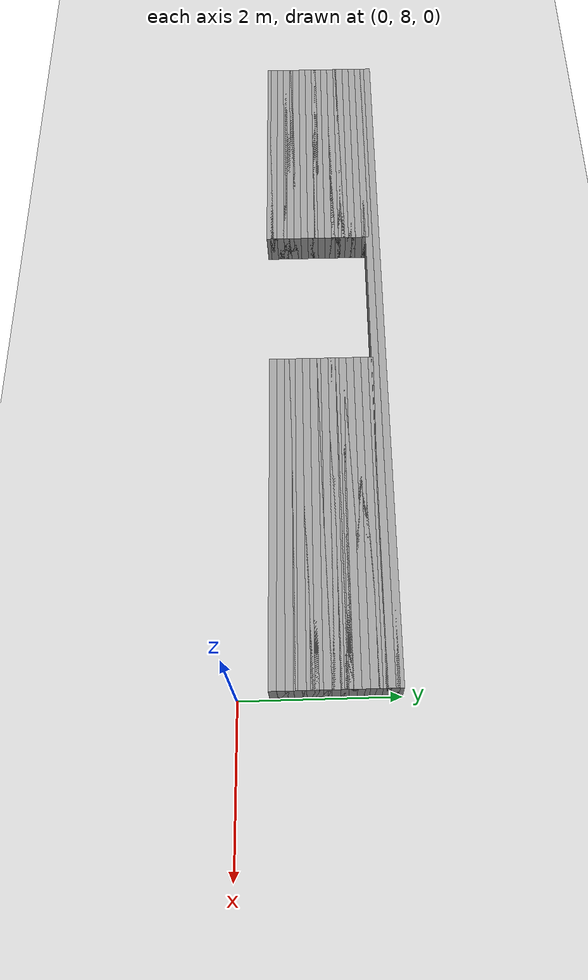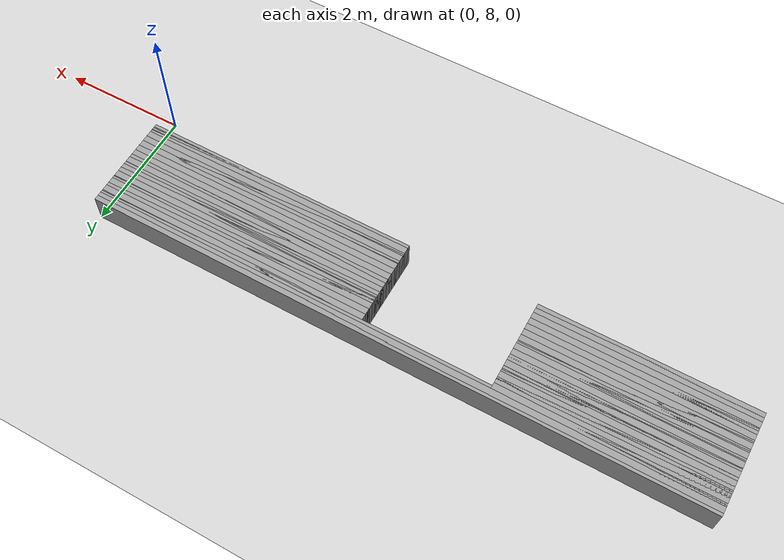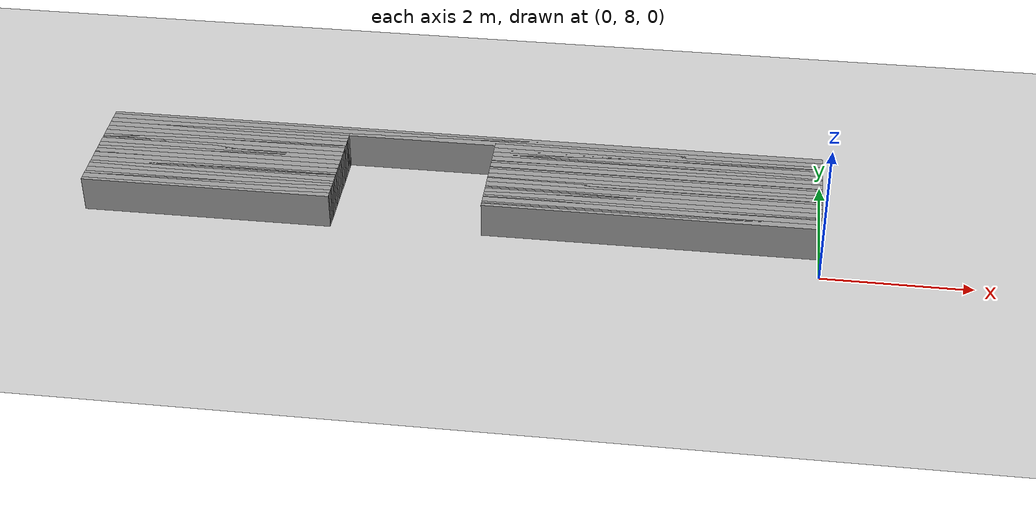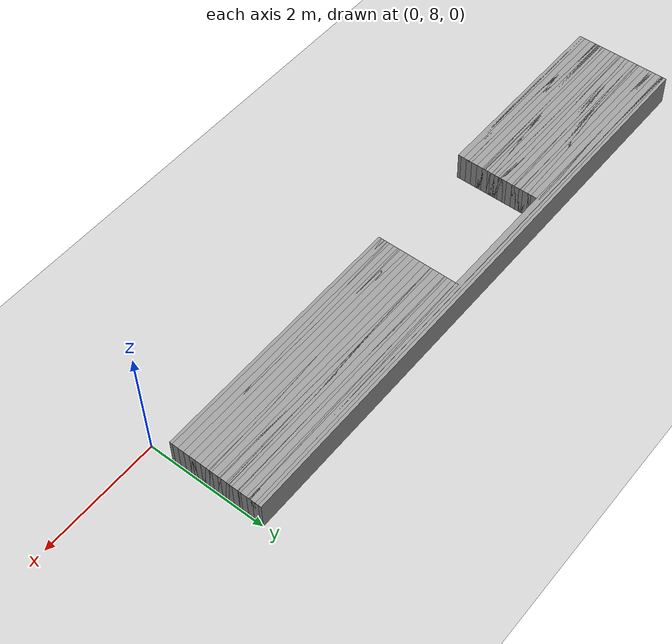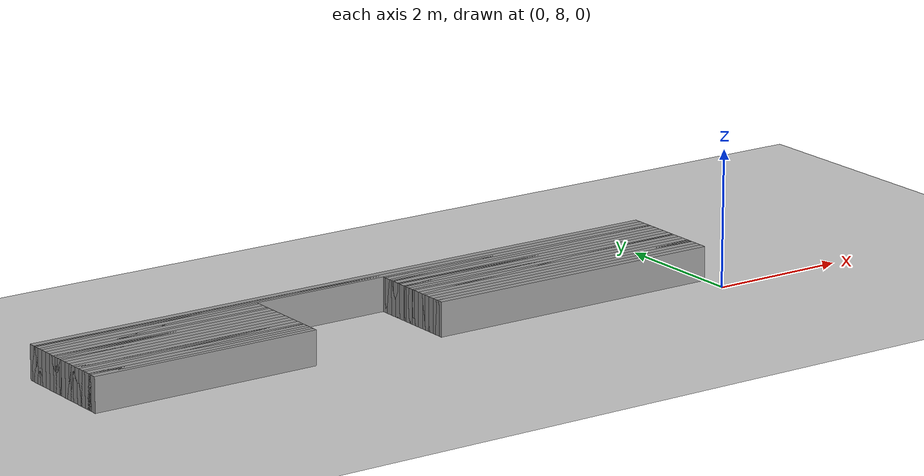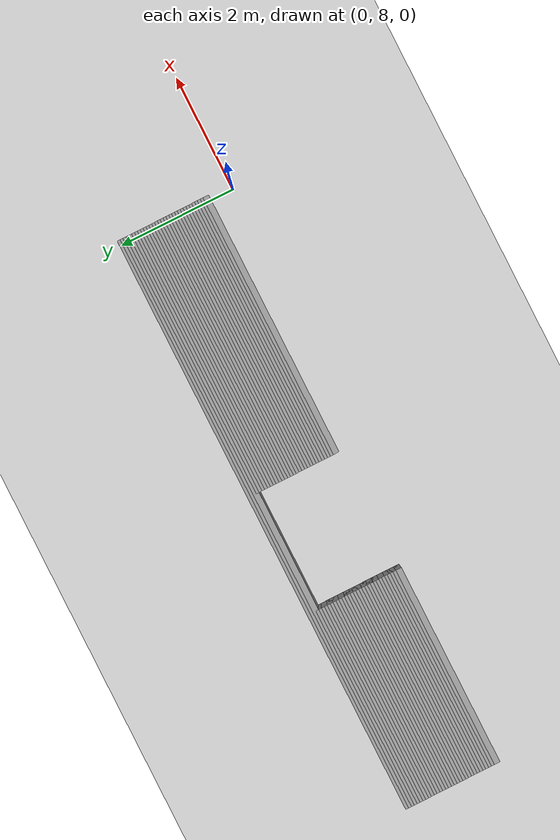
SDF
<sdf version="1.6">
 <world name="GridMap">
  <include><uri>model://sun</uri></include>
  <include><uri>model://ground_plane</uri></include>
  <model name="GridMap">
   <link name="Wall_(165.0,168.0)">
    <collision name="Wall_(165.0,168.0)_Collision">
     <geometry><box><size>3.4000000000000004 0.1 0.5</size></box></geometry>
     <pose>-8.25 8.4 0.25 0 -0 0</pose>
    </collision>
    <inertial>
     <mass>0.5</mass>
     <pose>0 0.01 0 0 0 0</pose>
     <inertia><ixx>0.004</ixx><ixy>0.001</ixy><ixz>0</ixz><iyy>0.006</iyy><iyz>0</iyz><izz>0.007</izz></inertia>
    </inertial>
    <visual name="Wall_(165.0,168.0)_Visual">
     <geometry><box><size>3.4000000000000004 0.1 0.5</size></box></geometry>
     <pose>-8.25 8.4 0.25 0 -0 0</pose>
     <material>
      <script><uri>file://media/materials/scripts/gazebo.material</uri><name>Gazebo/Grey</name></script>
      <ambient>1 1 1 1</ambient>
     </material>
     <meta><layer>0</layer></meta>
    </visual>
   </link>
   <link name="Wall_(45.0,169.0)">
    <collision name="Wall_(45.0,169.0)_Collision">
     <geometry><box><size>4.5 0.1 0.5</size></box></geometry>
     <pose>-2.25 8.450000000000001 0.25 0 -0 0</pose>
    </collision>
    <inertial>
     <mass>0.5</mass>
     <pose>0 0.01 0 0 0 0</pose>
     <inertia><ixx>0.004</ixx><ixy>0.001</ixy><ixz>0</ixz><iyy>0.006</iyy><iyz>0</iyz><izz>0.007</izz></inertia>
    </inertial>
    <visual name="Wall_(45.0,169.0)_Visual">
     <geometry><box><size>4.5 0.1 0.5</size></box></geometry>
     <pose>-2.25 8.450000000000001 0.25 0 -0 0</pose>
     <material>
      <script><uri>file://media/materials/scripts/gazebo.material</uri><name>Gazebo/Grey</name></script>
      <ambient>1 1 1 1</ambient>
     </material>
     <meta><layer>0</layer></meta>
    </visual>
   </link>
   <link name="Wall_(165.0,169.0)">
    <collision name="Wall_(165.0,169.0)_Collision">
     <geometry><box><size>3.4000000000000004 0.1 0.5</size></box></geometry>
     <pose>-8.25 8.450000000000001 0.25 0 -0 0</pose>
    </collision>
    <inertial>
     <mass>0.5</mass>
     <pose>0 0.01 0 0 0 0</pose>
     <inertia><ixx>0.004</ixx><ixy>0.001</ixy><ixz>0</ixz><iyy>0.006</iyy><iyz>0</iyz><izz>0.007</izz></inertia>
    </inertial>
    <visual name="Wall_(165.0,169.0)_Visual">
     <geometry><box><size>3.4000000000000004 0.1 0.5</size></box></geometry>
     <pose>-8.25 8.450000000000001 0.25 0 -0 0</pose>
     <material>
      <script><uri>file://media/materials/scripts/gazebo.material</uri><name>Gazebo/Grey</name></script>
      <ambient>1 1 1 1</ambient>
     </material>
     <meta><layer>0</layer></meta>
    </visual>
   </link>
   <link name="Wall_(45.0,170.0)">
    <collision name="Wall_(45.0,170.0)_Collision">
     <geometry><box><size>4.5 0.1 0.5</size></box></geometry>
     <pose>-2.25 8.5 0.25 0 -0 0</pose>
    </collision>
    <inertial>
     <mass>0.5</mass>
     <pose>0 0.01 0 0 0 0</pose>
     <inertia><ixx>0.004</ixx><ixy>0.001</ixy><ixz>0</ixz><iyy>0.006</iyy><iyz>0</iyz><izz>0.007</izz></inertia>
    </inertial>
    <visual name="Wall_(45.0,170.0)_Visual">
     <geometry><box><size>4.5 0.1 0.5</size></box></geometry>
     <pose>-2.25 8.5 0.25 0 -0 0</pose>
     <material>
      <script><uri>file://media/materials/scripts/gazebo.material</uri><name>Gazebo/Grey</name></script>
      <ambient>1 1 1 1</ambient>
     </material>
     <meta><layer>0</layer></meta>
    </visual>
   </link>
   <link name="Wall_(165.0,170.0)">
    <collision name="Wall_(165.0,170.0)_Collision">
     <geometry><box><size>3.4000000000000004 0.1 0.5</size></box></geometry>
     <pose>-8.25 8.5 0.25 0 -0 0</pose>
    </collision>
    <inertial>
     <mass>0.5</mass>
     <pose>0 0.01 0 0 0 0</pose>
     <inertia><ixx>0.004</ixx><ixy>0.001</ixy><ixz>0</ixz><iyy>0.006</iyy><iyz>0</iyz><izz>0.007</izz></inertia>
    </inertial>
    <visual name="Wall_(165.0,170.0)_Visual">
     <geometry><box><size>3.4000000000000004 0.1 0.5</size></box></geometry>
     <pose>-8.25 8.5 0.25 0 -0 0</pose>
     <material>
      <script><uri>file://media/materials/scripts/gazebo.material</uri><name>Gazebo/Grey</name></script>
      <ambient>1 1 1 1</ambient>
     </material>
     <meta><layer>0</layer></meta>
    </visual>
   </link>
   <link name="Wall_(45.0,171.0)">
    <collision name="Wall_(45.0,171.0)_Collision">
     <geometry><box><size>4.5 0.1 0.5</size></box></geometry>
     <pose>-2.25 8.55 0.25 0 -0 0</pose>
    </collision>
    <inertial>
     <mass>0.5</mass>
     <pose>0 0.01 0 0 0 0</pose>
     <inertia><ixx>0.004</ixx><ixy>0.001</ixy><ixz>0</ixz><iyy>0.006</iyy><iyz>0</iyz><izz>0.007</izz></inertia>
    </inertial>
    <visual name="Wall_(45.0,171.0)_Visual">
     <geometry><box><size>4.5 0.1 0.5</size></box></geometry>
     <pose>-2.25 8.55 0.25 0 -0 0</pose>
     <material>
      <script><uri>file://media/materials/scripts/gazebo.material</uri><name>Gazebo/Grey</name></script>
      <ambient>1 1 1 1</ambient>
     </material>
     <meta><layer>0</layer></meta>
    </visual>
   </link>
   <link name="Wall_(165.0,171.0)">
    <collision name="Wall_(165.0,171.0)_Collision">
     <geometry><box><size>3.4000000000000004 0.1 0.5</size></box></geometry>
     <pose>-8.25 8.55 0.25 0 -0 0</pose>
    </collision>
    <inertial>
     <mass>0.5</mass>
     <pose>0 0.01 0 0 0 0</pose>
     <inertia><ixx>0.004</ixx><ixy>0.001</ixy><ixz>0</ixz><iyy>0.006</iyy><iyz>0</iyz><izz>0.007</izz></inertia>
    </inertial>
    <visual name="Wall_(165.0,171.0)_Visual">
     <geometry><box><size>3.4000000000000004 0.1 0.5</size></box></geometry>
     <pose>-8.25 8.55 0.25 0 -0 0</pose>
     <material>
      <script><uri>file://media/materials/scripts/gazebo.material</uri><name>Gazebo/Grey</name></script>
      <ambient>1 1 1 1</ambient>
     </material>
     <meta><layer>0</layer></meta>
    </visual>
   </link>
   <link name="Wall_(45.0,172.0)">
    <collision name="Wall_(45.0,172.0)_Collision">
     <geometry><box><size>4.5 0.1 0.5</size></box></geometry>
     <pose>-2.25 8.6 0.25 0 -0 0</pose>
    </collision>
    <inertial>
     <mass>0.5</mass>
     <pose>0 0.01 0 0 0 0</pose>
     <inertia><ixx>0.004</ixx><ixy>0.001</ixy><ixz>0</ixz><iyy>0.006</iyy><iyz>0</iyz><izz>0.007</izz></inertia>
    </inertial>
    <visual name="Wall_(45.0,172.0)_Visual">
     <geometry><box><size>4.5 0.1 0.5</size></box></geometry>
     <pose>-2.25 8.6 0.25 0 -0 0</pose>
     <material>
      <script><uri>file://media/materials/scripts/gazebo.material</uri><name>Gazebo/Grey</name></script>
      <ambient>1 1 1 1</ambient>
     </material>
     <meta><layer>0</layer></meta>
    </visual>
   </link>
   <link name="Wall_(165.0,172.0)">
    <collision name="Wall_(165.0,172.0)_Collision">
     <geometry><box><size>3.4000000000000004 0.1 0.5</size></box></geometry>
     <pose>-8.25 8.6 0.25 0 -0 0</pose>
    </collision>
    <inertial>
     <mass>0.5</mass>
     <pose>0 0.01 0 0 0 0</pose>
     <inertia><ixx>0.004</ixx><ixy>0.001</ixy><ixz>0</ixz><iyy>0.006</iyy><iyz>0</iyz><izz>0.007</izz></inertia>
    </inertial>
    <visual name="Wall_(165.0,172.0)_Visual">
     <geometry><box><size>3.4000000000000004 0.1 0.5</size></box></geometry>
     <pose>-8.25 8.6 0.25 0 -0 0</pose>
     <material>
      <script><uri>file://media/materials/scripts/gazebo.material</uri><name>Gazebo/Grey</name></script>
      <ambient>1 1 1 1</ambient>
     </material>
     <meta><layer>0</layer></meta>
    </visual>
   </link>
   <link name="Wall_(45.0,173.0)">
    <collision name="Wall_(45.0,173.0)_Collision">
     <geometry><box><size>4.5 0.1 0.5</size></box></geometry>
     <pose>-2.25 8.65 0.25 0 -0 0</pose>
    </collision>
    <inertial>
     <mass>0.5</mass>
     <pose>0 0.01 0 0 0 0</pose>
     <inertia><ixx>0.004</ixx><ixy>0.001</ixy><ixz>0</ixz><iyy>0.006</iyy><iyz>0</iyz><izz>0.007</izz></inertia>
    </inertial>
    <visual name="Wall_(45.0,173.0)_Visual">
     <geometry><box><size>4.5 0.1 0.5</size></box></geometry>
     <pose>-2.25 8.65 0.25 0 -0 0</pose>
     <material>
      <script><uri>file://media/materials/scripts/gazebo.material</uri><name>Gazebo/Grey</name></script>
      <ambient>1 1 1 1</ambient>
     </material>
     <meta><layer>0</layer></meta>
    </visual>
   </link>
   <link name="Wall_(165.0,173.0)">
    <collision name="Wall_(165.0,173.0)_Collision">
     <geometry><box><size>3.4000000000000004 0.1 0.5</size></box></geometry>
     <pose>-8.25 8.65 0.25 0 -0 0</pose>
    </collision>
    <inertial>
     <mass>0.5</mass>
     <pose>0 0.01 0 0 0 0</pose>
     <inertia><ixx>0.004</ixx><ixy>0.001</ixy><ixz>0</ixz><iyy>0.006</iyy><iyz>0</iyz><izz>0.007</izz></inertia>
    </inertial>
    <visual name="Wall_(165.0,173.0)_Visual">
     <geometry><box><size>3.4000000000000004 0.1 0.5</size></box></geometry>
     <pose>-8.25 8.65 0.25 0 -0 0</pose>
     <material>
      <script><uri>file://media/materials/scripts/gazebo.material</uri><name>Gazebo/Grey</name></script>
      <ambient>1 1 1 1</ambient>
     </material>
     <meta><layer>0</layer></meta>
    </visual>
   </link>
   <link name="Wall_(45.0,174.0)">
    <collision name="Wall_(45.0,174.0)_Collision">
     <geometry><box><size>4.5 0.1 0.5</size></box></geometry>
     <pose>-2.25 8.700000000000001 0.25 0 -0 0</pose>
    </collision>
    <inertial>
     <mass>0.5</mass>
     <pose>0 0.01 0 0 0 0</pose>
     <inertia><ixx>0.004</ixx><ixy>0.001</ixy><ixz>0</ixz><iyy>0.006</iyy><iyz>0</iyz><izz>0.007</izz></inertia>
    </inertial>
    <visual name="Wall_(45.0,174.0)_Visual">
     <geometry><box><size>4.5 0.1 0.5</size></box></geometry>
     <pose>-2.25 8.700000000000001 0.25 0 -0 0</pose>
     <material>
      <script><uri>file://media/materials/scripts/gazebo.material</uri><name>Gazebo/Grey</name></script>
      <ambient>1 1 1 1</ambient>
     </material>
     <meta><layer>0</layer></meta>
    </visual>
   </link>
   <link name="Wall_(165.0,174.0)">
    <collision name="Wall_(165.0,174.0)_Collision">
     <geometry><box><size>3.4000000000000004 0.1 0.5</size></box></geometry>
     <pose>-8.25 8.700000000000001 0.25 0 -0 0</pose>
    </collision>
    <inertial>
     <mass>0.5</mass>
     <pose>0 0.01 0 0 0 0</pose>
     <inertia><ixx>0.004</ixx><ixy>0.001</ixy><ixz>0</ixz><iyy>0.006</iyy><iyz>0</iyz><izz>0.007</izz></inertia>
    </inertial>
    <visual name="Wall_(165.0,174.0)_Visual">
     <geometry><box><size>3.4000000000000004 0.1 0.5</size></box></geometry>
     <pose>-8.25 8.700000000000001 0.25 0 -0 0</pose>
     <material>
      <script><uri>file://media/materials/scripts/gazebo.material</uri><name>Gazebo/Grey</name></script>
      <ambient>1 1 1 1</ambient>
     </material>
     <meta><layer>0</layer></meta>
    </visual>
   </link>
   <link name="Wall_(45.0,175.0)">
    <collision name="Wall_(45.0,175.0)_Collision">
     <geometry><box><size>4.5 0.1 0.5</size></box></geometry>
     <pose>-2.25 8.75 0.25 0 -0 0</pose>
    </collision>
    <inertial>
     <mass>0.5</mass>
     <pose>0 0.01 0 0 0 0</pose>
     <inertia><ixx>0.004</ixx><ixy>0.001</ixy><ixz>0</ixz><iyy>0.006</iyy><iyz>0</iyz><izz>0.007</izz></inertia>
    </inertial>
    <visual name="Wall_(45.0,175.0)_Visual">
     <geometry><box><size>4.5 0.1 0.5</size></box></geometry>
     <pose>-2.25 8.75 0.25 0 -0 0</pose>
     <material>
      <script><uri>file://media/materials/scripts/gazebo.material</uri><name>Gazebo/Grey</name></script>
      <ambient>1 1 1 1</ambient>
     </material>
     <meta><layer>0</layer></meta>
    </visual>
   </link>
   <link name="Wall_(165.0,175.0)">
    <collision name="Wall_(165.0,175.0)_Collision">
     <geometry><box><size>3.4000000000000004 0.1 0.5</size></box></geometry>
     <pose>-8.25 8.75 0.25 0 -0 0</pose>
    </collision>
    <inertial>
     <mass>0.5</mass>
     <pose>0 0.01 0 0 0 0</pose>
     <inertia><ixx>0.004</ixx><ixy>0.001</ixy><ixz>0</ixz><iyy>0.006</iyy><iyz>0</iyz><izz>0.007</izz></inertia>
    </inertial>
    <visual name="Wall_(165.0,175.0)_Visual">
     <geometry><box><size>3.4000000000000004 0.1 0.5</size></box></geometry>
     <pose>-8.25 8.75 0.25 0 -0 0</pose>
     <material>
      <script><uri>file://media/materials/scripts/gazebo.material</uri><name>Gazebo/Grey</name></script>
      <ambient>1 1 1 1</ambient>
     </material>
     <meta><layer>0</layer></meta>
    </visual>
   </link>
   <link name="Wall_(45.0,176.0)">
    <collision name="Wall_(45.0,176.0)_Collision">
     <geometry><box><size>4.5 0.1 0.5</size></box></geometry>
     <pose>-2.25 8.8 0.25 0 -0 0</pose>
    </collision>
    <inertial>
     <mass>0.5</mass>
     <pose>0 0.01 0 0 0 0</pose>
     <inertia><ixx>0.004</ixx><ixy>0.001</ixy><ixz>0</ixz><iyy>0.006</iyy><iyz>0</iyz><izz>0.007</izz></inertia>
    </inertial>
    <visual name="Wall_(45.0,176.0)_Visual">
     <geometry><box><size>4.5 0.1 0.5</size></box></geometry>
     <pose>-2.25 8.8 0.25 0 -0 0</pose>
     <material>
      <script><uri>file://media/materials/scripts/gazebo.material</uri><name>Gazebo/Grey</name></script>
      <ambient>1 1 1 1</ambient>
     </material>
     <meta><layer>0</layer></meta>
    </visual>
   </link>
   <link name="Wall_(165.0,176.0)">
    <collision name="Wall_(165.0,176.0)_Collision">
     <geometry><box><size>3.4000000000000004 0.1 0.5</size></box></geometry>
     <pose>-8.25 8.8 0.25 0 -0 0</pose>
    </collision>
    <inertial>
     <mass>0.5</mass>
     <pose>0 0.01 0 0 0 0</pose>
     <inertia><ixx>0.004</ixx><ixy>0.001</ixy><ixz>0</ixz><iyy>0.006</iyy><iyz>0</iyz><izz>0.007</izz></inertia>
    </inertial>
    <visual name="Wall_(165.0,176.0)_Visual">
     <geometry><box><size>3.4000000000000004 0.1 0.5</size></box></geometry>
     <pose>-8.25 8.8 0.25 0 -0 0</pose>
     <material>
      <script><uri>file://media/materials/scripts/gazebo.material</uri><name>Gazebo/Grey</name></script>
      <ambient>1 1 1 1</ambient>
     </material>
     <meta><layer>0</layer></meta>
    </visual>
   </link>
   <link name="Wall_(45.0,177.0)">
    <collision name="Wall_(45.0,177.0)_Collision">
     <geometry><box><size>4.5 0.1 0.5</size></box></geometry>
     <pose>-2.25 8.85 0.25 0 -0 0</pose>
    </collision>
    <inertial>
     <mass>0.5</mass>
     <pose>0 0.01 0 0 0 0</pose>
     <inertia><ixx>0.004</ixx><ixy>0.001</ixy><ixz>0</ixz><iyy>0.006</iyy><iyz>0</iyz><izz>0.007</izz></inertia>
    </inertial>
    <visual name="Wall_(45.0,177.0)_Visual">
     <geometry><box><size>4.5 0.1 0.5</size></box></geometry>
     <pose>-2.25 8.85 0.25 0 -0 0</pose>
     <material>
      <script><uri>file://media/materials/scripts/gazebo.material</uri><name>Gazebo/Grey</name></script>
      <ambient>1 1 1 1</ambient>
     </material>
     <meta><layer>0</layer></meta>
    </visual>
   </link>
   <link name="Wall_(165.0,177.0)">
    <collision name="Wall_(165.0,177.0)_Collision">
     <geometry><box><size>3.4000000000000004 0.1 0.5</size></box></geometry>
     <pose>-8.25 8.85 0.25 0 -0 0</pose>
    </collision>
    <inertial>
     <mass>0.5</mass>
     <pose>0 0.01 0 0 0 0</pose>
     <inertia><ixx>0.004</ixx><ixy>0.001</ixy><ixz>0</ixz><iyy>0.006</iyy><iyz>0</iyz><izz>0.007</izz></inertia>
    </inertial>
    <visual name="Wall_(165.0,177.0)_Visual">
     <geometry><box><size>3.4000000000000004 0.1 0.5</size></box></geometry>
     <pose>-8.25 8.85 0.25 0 -0 0</pose>
     <material>
      <script><uri>file://media/materials/scripts/gazebo.material</uri><name>Gazebo/Grey</name></script>
      <ambient>1 1 1 1</ambient>
     </material>
     <meta><layer>0</layer></meta>
    </visual>
   </link>
   <link name="Wall_(45.0,178.0)">
    <collision name="Wall_(45.0,178.0)_Collision">
     <geometry><box><size>4.5 0.1 0.5</size></box></geometry>
     <pose>-2.25 8.9 0.25 0 -0 0</pose>
    </collision>
    <inertial>
     <mass>0.5</mass>
     <pose>0 0.01 0 0 0 0</pose>
     <inertia><ixx>0.004</ixx><ixy>0.001</ixy><ixz>0</ixz><iyy>0.006</iyy><iyz>0</iyz><izz>0.007</izz></inertia>
    </inertial>
    <visual name="Wall_(45.0,178.0)_Visual">
     <geometry><box><size>4.5 0.1 0.5</size></box></geometry>
     <pose>-2.25 8.9 0.25 0 -0 0</pose>
     <material>
      <script><uri>file://media/materials/scripts/gazebo.material</uri><name>Gazebo/Grey</name></script>
      <ambient>1 1 1 1</ambient>
     </material>
     <meta><layer>0</layer></meta>
    </visual>
   </link>
   <link name="Wall_(165.0,178.0)">
    <collision name="Wall_(165.0,178.0)_Collision">
     <geometry><box><size>3.4000000000000004 0.1 0.5</size></box></geometry>
     <pose>-8.25 8.9 0.25 0 -0 0</pose>
    </collision>
    <inertial>
     <mass>0.5</mass>
     <pose>0 0.01 0 0 0 0</pose>
     <inertia><ixx>0.004</ixx><ixy>0.001</ixy><ixz>0</ixz><iyy>0.006</iyy><iyz>0</iyz><izz>0.007</izz></inertia>
    </inertial>
    <visual name="Wall_(165.0,178.0)_Visual">
     <geometry><box><size>3.4000000000000004 0.1 0.5</size></box></geometry>
     <pose>-8.25 8.9 0.25 0 -0 0</pose>
     <material>
      <script><uri>file://media/materials/scripts/gazebo.material</uri><name>Gazebo/Grey</name></script>
      <ambient>1 1 1 1</ambient>
     </material>
     <meta><layer>0</layer></meta>
    </visual>
   </link>
   <link name="Wall_(45.0,179.0)">
    <collision name="Wall_(45.0,179.0)_Collision">
     <geometry><box><size>4.5 0.1 0.5</size></box></geometry>
     <pose>-2.25 8.950000000000001 0.25 0 -0 0</pose>
    </collision>
    <inertial>
     <mass>0.5</mass>
     <pose>0 0.01 0 0 0 0</pose>
     <inertia><ixx>0.004</ixx><ixy>0.001</ixy><ixz>0</ixz><iyy>0.006</iyy><iyz>0</iyz><izz>0.007</izz></inertia>
    </inertial>
    <visual name="Wall_(45.0,179.0)_Visual">
     <geometry><box><size>4.5 0.1 0.5</size></box></geometry>
     <pose>-2.25 8.950000000000001 0.25 0 -0 0</pose>
     <material>
      <script><uri>file://media/materials/scripts/gazebo.material</uri><name>Gazebo/Grey</name></script>
      <ambient>1 1 1 1</ambient>
     </material>
     <meta><layer>0</layer></meta>
    </visual>
   </link>
   <link name="Wall_(165.0,179.0)">
    <collision name="Wall_(165.0,179.0)_Collision">
     <geometry><box><size>3.4000000000000004 0.1 0.5</size></box></geometry>
     <pose>-8.25 8.950000000000001 0.25 0 -0 0</pose>
    </collision>
    <inertial>
     <mass>0.5</mass>
     <pose>0 0.01 0 0 0 0</pose>
     <inertia><ixx>0.004</ixx><ixy>0.001</ixy><ixz>0</ixz><iyy>0.006</iyy><iyz>0</iyz><izz>0.007</izz></inertia>
    </inertial>
    <visual name="Wall_(165.0,179.0)_Visual">
     <geometry><box><size>3.4000000000000004 0.1 0.5</size></box></geometry>
     <pose>-8.25 8.950000000000001 0.25 0 -0 0</pose>
     <material>
      <script><uri>file://media/materials/scripts/gazebo.material</uri><name>Gazebo/Grey</name></script>
      <ambient>1 1 1 1</ambient>
     </material>
     <meta><layer>0</layer></meta>
    </visual>
   </link>
   <link name="Wall_(45.0,180.0)">
    <collision name="Wall_(45.0,180.0)_Collision">
     <geometry><box><size>4.5 0.1 0.5</size></box></geometry>
     <pose>-2.25 9.0 0.25 0 -0 0</pose>
    </collision>
    <inertial>
     <mass>0.5</mass>
     <pose>0 0.01 0 0 0 0</pose>
     <inertia><ixx>0.004</ixx><ixy>0.001</ixy><ixz>0</ixz><iyy>0.006</iyy><iyz>0</iyz><izz>0.007</izz></inertia>
    </inertial>
    <visual name="Wall_(45.0,180.0)_Visual">
     <geometry><box><size>4.5 0.1 0.5</size></box></geometry>
     <pose>-2.25 9.0 0.25 0 -0 0</pose>
     <material>
      <script><uri>file://media/materials/scripts/gazebo.material</uri><name>Gazebo/Grey</name></script>
      <ambient>1 1 1 1</ambient>
     </material>
     <meta><layer>0</layer></meta>
    </visual>
   </link>
   <link name="Wall_(165.0,180.0)">
    <collision name="Wall_(165.0,180.0)_Collision">
     <geometry><box><size>3.4000000000000004 0.1 0.5</size></box></geometry>
     <pose>-8.25 9.0 0.25 0 -0 0</pose>
    </collision>
    <inertial>
     <mass>0.5</mass>
     <pose>0 0.01 0 0 0 0</pose>
     <inertia><ixx>0.004</ixx><ixy>0.001</ixy><ixz>0</ixz><iyy>0.006</iyy><iyz>0</iyz><izz>0.007</izz></inertia>
    </inertial>
    <visual name="Wall_(165.0,180.0)_Visual">
     <geometry><box><size>3.4000000000000004 0.1 0.5</size></box></geometry>
     <pose>-8.25 9.0 0.25 0 -0 0</pose>
     <material>
      <script><uri>file://media/materials/scripts/gazebo.material</uri><name>Gazebo/Grey</name></script>
      <ambient>1 1 1 1</ambient>
     </material>
     <meta><layer>0</layer></meta>
    </visual>
   </link>
   <link name="Wall_(45.0,181.0)">
    <collision name="Wall_(45.0,181.0)_Collision">
     <geometry><box><size>4.5 0.1 0.5</size></box></geometry>
     <pose>-2.25 9.05 0.25 0 -0 0</pose>
    </collision>
    <inertial>
     <mass>0.5</mass>
     <pose>0 0.01 0 0 0 0</pose>
     <inertia><ixx>0.004</ixx><ixy>0.001</ixy><ixz>0</ixz><iyy>0.006</iyy><iyz>0</iyz><izz>0.007</izz></inertia>
    </inertial>
    <visual name="Wall_(45.0,181.0)_Visual">
     <geometry><box><size>4.5 0.1 0.5</size></box></geometry>
     <pose>-2.25 9.05 0.25 0 -0 0</pose>
     <material>
      <script><uri>file://media/materials/scripts/gazebo.material</uri><name>Gazebo/Grey</name></script>
      <ambient>1 1 1 1</ambient>
     </material>
     <meta><layer>0</layer></meta>
    </visual>
   </link>
   <link name="Wall_(165.0,181.0)">
    <collision name="Wall_(165.0,181.0)_Collision">
     <geometry><box><size>3.4000000000000004 0.1 0.5</size></box></geometry>
     <pose>-8.25 9.05 0.25 0 -0 0</pose>
    </collision>
    <inertial>
     <mass>0.5</mass>
     <pose>0 0.01 0 0 0 0</pose>
     <inertia><ixx>0.004</ixx><ixy>0.001</ixy><ixz>0</ixz><iyy>0.006</iyy><iyz>0</iyz><izz>0.007</izz></inertia>
    </inertial>
    <visual name="Wall_(165.0,181.0)_Visual">
     <geometry><box><size>3.4000000000000004 0.1 0.5</size></box></geometry>
     <pose>-8.25 9.05 0.25 0 -0 0</pose>
     <material>
      <script><uri>file://media/materials/scripts/gazebo.material</uri><name>Gazebo/Grey</name></script>
      <ambient>1 1 1 1</ambient>
     </material>
     <meta><layer>0</layer></meta>
    </visual>
   </link>
   <link name="Wall_(45.0,182.0)">
    <collision name="Wall_(45.0,182.0)_Collision">
     <geometry><box><size>4.5 0.1 0.5</size></box></geometry>
     <pose>-2.25 9.1 0.25 0 -0 0</pose>
    </collision>
    <inertial>
     <mass>0.5</mass>
     <pose>0 0.01 0 0 0 0</pose>
     <inertia><ixx>0.004</ixx><ixy>0.001</ixy><ixz>0</ixz><iyy>0.006</iyy><iyz>0</iyz><izz>0.007</izz></inertia>
    </inertial>
    <visual name="Wall_(45.0,182.0)_Visual">
     <geometry><box><size>4.5 0.1 0.5</size></box></geometry>
     <pose>-2.25 9.1 0.25 0 -0 0</pose>
     <material>
      <script><uri>file://media/materials/scripts/gazebo.material</uri><name>Gazebo/Grey</name></script>
      <ambient>1 1 1 1</ambient>
     </material>
     <meta><layer>0</layer></meta>
    </visual>
   </link>
   <link name="Wall_(165.0,182.0)">
    <collision name="Wall_(165.0,182.0)_Collision">
     <geometry><box><size>3.4000000000000004 0.1 0.5</size></box></geometry>
     <pose>-8.25 9.1 0.25 0 -0 0</pose>
    </collision>
    <inertial>
     <mass>0.5</mass>
     <pose>0 0.01 0 0 0 0</pose>
     <inertia><ixx>0.004</ixx><ixy>0.001</ixy><ixz>0</ixz><iyy>0.006</iyy><iyz>0</iyz><izz>0.007</izz></inertia>
    </inertial>
    <visual name="Wall_(165.0,182.0)_Visual">
     <geometry><box><size>3.4000000000000004 0.1 0.5</size></box></geometry>
     <pose>-8.25 9.1 0.25 0 -0 0</pose>
     <material>
      <script><uri>file://media/materials/scripts/gazebo.material</uri><name>Gazebo/Grey</name></script>
      <ambient>1 1 1 1</ambient>
     </material>
     <meta><layer>0</layer></meta>
    </visual>
   </link>
   <link name="Wall_(45.0,183.0)">
    <collision name="Wall_(45.0,183.0)_Collision">
     <geometry><box><size>4.5 0.1 0.5</size></box></geometry>
     <pose>-2.25 9.15 0.25 0 -0 0</pose>
    </collision>
    <inertial>
     <mass>0.5</mass>
     <pose>0 0.01 0 0 0 0</pose>
     <inertia><ixx>0.004</ixx><ixy>0.001</ixy><ixz>0</ixz><iyy>0.006</iyy><iyz>0</iyz><izz>0.007</izz></inertia>
    </inertial>
    <visual name="Wall_(45.0,183.0)_Visual">
     <geometry><box><size>4.5 0.1 0.5</size></box></geometry>
     <pose>-2.25 9.15 0.25 0 -0 0</pose>
     <material>
      <script><uri>file://media/materials/scripts/gazebo.material</uri><name>Gazebo/Grey</name></script>
      <ambient>1 1 1 1</ambient>
     </material>
     <meta><layer>0</layer></meta>
    </visual>
   </link>
   <link name="Wall_(165.0,183.0)">
    <collision name="Wall_(165.0,183.0)_Collision">
     <geometry><box><size>3.4000000000000004 0.1 0.5</size></box></geometry>
     <pose>-8.25 9.15 0.25 0 -0 0</pose>
    </collision>
    <inertial>
     <mass>0.5</mass>
     <pose>0 0.01 0 0 0 0</pose>
     <inertia><ixx>0.004</ixx><ixy>0.001</ixy><ixz>0</ixz><iyy>0.006</iyy><iyz>0</iyz><izz>0.007</izz></inertia>
    </inertial>
    <visual name="Wall_(165.0,183.0)_Visual">
     <geometry><box><size>3.4000000000000004 0.1 0.5</size></box></geometry>
     <pose>-8.25 9.15 0.25 0 -0 0</pose>
     <material>
      <script><uri>file://media/materials/scripts/gazebo.material</uri><name>Gazebo/Grey</name></script>
      <ambient>1 1 1 1</ambient>
     </material>
     <meta><layer>0</layer></meta>
    </visual>
   </link>
   <link name="Wall_(45.0,184.0)">
    <collision name="Wall_(45.0,184.0)_Collision">
     <geometry><box><size>4.5 0.1 0.5</size></box></geometry>
     <pose>-2.25 9.200000000000001 0.25 0 -0 0</pose>
    </collision>
    <inertial>
     <mass>0.5</mass>
     <pose>0 0.01 0 0 0 0</pose>
     <inertia><ixx>0.004</ixx><ixy>0.001</ixy><ixz>0</ixz><iyy>0.006</iyy><iyz>0</iyz><izz>0.007</izz></inertia>
    </inertial>
    <visual name="Wall_(45.0,184.0)_Visual">
     <geometry><box><size>4.5 0.1 0.5</size></box></geometry>
     <pose>-2.25 9.200000000000001 0.25 0 -0 0</pose>
     <material>
      <script><uri>file://media/materials/scripts/gazebo.material</uri><name>Gazebo/Grey</name></script>
      <ambient>1 1 1 1</ambient>
     </material>
     <meta><layer>0</layer></meta>
    </visual>
   </link>
   <link name="Wall_(165.0,184.0)">
    <collision name="Wall_(165.0,184.0)_Collision">
     <geometry><box><size>3.4000000000000004 0.1 0.5</size></box></geometry>
     <pose>-8.25 9.200000000000001 0.25 0 -0 0</pose>
    </collision>
    <inertial>
     <mass>0.5</mass>
     <pose>0 0.01 0 0 0 0</pose>
     <inertia><ixx>0.004</ixx><ixy>0.001</ixy><ixz>0</ixz><iyy>0.006</iyy><iyz>0</iyz><izz>0.007</izz></inertia>
    </inertial>
    <visual name="Wall_(165.0,184.0)_Visual">
     <geometry><box><size>3.4000000000000004 0.1 0.5</size></box></geometry>
     <pose>-8.25 9.200000000000001 0.25 0 -0 0</pose>
     <material>
      <script><uri>file://media/materials/scripts/gazebo.material</uri><name>Gazebo/Grey</name></script>
      <ambient>1 1 1 1</ambient>
     </material>
     <meta><layer>0</layer></meta>
    </visual>
   </link>
   <link name="Wall_(45.0,185.0)">
    <collision name="Wall_(45.0,185.0)_Collision">
     <geometry><box><size>4.5 0.1 0.5</size></box></geometry>
     <pose>-2.25 9.25 0.25 0 -0 0</pose>
    </collision>
    <inertial>
     <mass>0.5</mass>
     <pose>0 0.01 0 0 0 0</pose>
     <inertia><ixx>0.004</ixx><ixy>0.001</ixy><ixz>0</ixz><iyy>0.006</iyy><iyz>0</iyz><izz>0.007</izz></inertia>
    </inertial>
    <visual name="Wall_(45.0,185.0)_Visual">
     <geometry><box><size>4.5 0.1 0.5</size></box></geometry>
     <pose>-2.25 9.25 0.25 0 -0 0</pose>
     <material>
      <script><uri>file://media/materials/scripts/gazebo.material</uri><name>Gazebo/Grey</name></script>
      <ambient>1 1 1 1</ambient>
     </material>
     <meta><layer>0</layer></meta>
    </visual>
   </link>
   <link name="Wall_(165.0,185.0)">
    <collision name="Wall_(165.0,185.0)_Collision">
     <geometry><box><size>3.4000000000000004 0.1 0.5</size></box></geometry>
     <pose>-8.25 9.25 0.25 0 -0 0</pose>
    </collision>
    <inertial>
     <mass>0.5</mass>
     <pose>0 0.01 0 0 0 0</pose>
     <inertia><ixx>0.004</ixx><ixy>0.001</ixy><ixz>0</ixz><iyy>0.006</iyy><iyz>0</iyz><izz>0.007</izz></inertia>
    </inertial>
    <visual name="Wall_(165.0,185.0)_Visual">
     <geometry><box><size>3.4000000000000004 0.1 0.5</size></box></geometry>
     <pose>-8.25 9.25 0.25 0 -0 0</pose>
     <material>
      <script><uri>file://media/materials/scripts/gazebo.material</uri><name>Gazebo/Grey</name></script>
      <ambient>1 1 1 1</ambient>
     </material>
     <meta><layer>0</layer></meta>
    </visual>
   </link>
   <link name="Wall_(45.0,186.0)">
    <collision name="Wall_(45.0,186.0)_Collision">
     <geometry><box><size>4.5 0.1 0.5</size></box></geometry>
     <pose>-2.25 9.3 0.25 0 -0 0</pose>
    </collision>
    <inertial>
     <mass>0.5</mass>
     <pose>0 0.01 0 0 0 0</pose>
     <inertia><ixx>0.004</ixx><ixy>0.001</ixy><ixz>0</ixz><iyy>0.006</iyy><iyz>0</iyz><izz>0.007</izz></inertia>
    </inertial>
    <visual name="Wall_(45.0,186.0)_Visual">
     <geometry><box><size>4.5 0.1 0.5</size></box></geometry>
     <pose>-2.25 9.3 0.25 0 -0 0</pose>
     <material>
      <script><uri>file://media/materials/scripts/gazebo.material</uri><name>Gazebo/Grey</name></script>
      <ambient>1 1 1 1</ambient>
     </material>
     <meta><layer>0</layer></meta>
    </visual>
   </link>
   <link name="Wall_(165.0,186.0)">
    <collision name="Wall_(165.0,186.0)_Collision">
     <geometry><box><size>3.4000000000000004 0.1 0.5</size></box></geometry>
     <pose>-8.25 9.3 0.25 0 -0 0</pose>
    </collision>
    <inertial>
     <mass>0.5</mass>
     <pose>0 0.01 0 0 0 0</pose>
     <inertia><ixx>0.004</ixx><ixy>0.001</ixy><ixz>0</ixz><iyy>0.006</iyy><iyz>0</iyz><izz>0.007</izz></inertia>
    </inertial>
    <visual name="Wall_(165.0,186.0)_Visual">
     <geometry><box><size>3.4000000000000004 0.1 0.5</size></box></geometry>
     <pose>-8.25 9.3 0.25 0 -0 0</pose>
     <material>
      <script><uri>file://media/materials/scripts/gazebo.material</uri><name>Gazebo/Grey</name></script>
      <ambient>1 1 1 1</ambient>
     </material>
     <meta><layer>0</layer></meta>
    </visual>
   </link>
   <link name="Wall_(45.0,187.0)">
    <collision name="Wall_(45.0,187.0)_Collision">
     <geometry><box><size>4.5 0.1 0.5</size></box></geometry>
     <pose>-2.25 9.35 0.25 0 -0 0</pose>
    </collision>
    <inertial>
     <mass>0.5</mass>
     <pose>0 0.01 0 0 0 0</pose>
     <inertia><ixx>0.004</ixx><ixy>0.001</ixy><ixz>0</ixz><iyy>0.006</iyy><iyz>0</iyz><izz>0.007</izz></inertia>
    </inertial>
    <visual name="Wall_(45.0,187.0)_Visual">
     <geometry><box><size>4.5 0.1 0.5</size></box></geometry>
     <pose>-2.25 9.35 0.25 0 -0 0</pose>
     <material>
      <script><uri>file://media/materials/scripts/gazebo.material</uri><name>Gazebo/Grey</name></script>
      <ambient>1 1 1 1</ambient>
     </material>
     <meta><layer>0</layer></meta>
    </visual>
   </link>
   <link name="Wall_(165.0,187.0)">
    <collision name="Wall_(165.0,187.0)_Collision">
     <geometry><box><size>3.4000000000000004 0.1 0.5</size></box></geometry>
     <pose>-8.25 9.35 0.25 0 -0 0</pose>
    </collision>
    <inertial>
     <mass>0.5</mass>
     <pose>0 0.01 0 0 0 0</pose>
     <inertia><ixx>0.004</ixx><ixy>0.001</ixy><ixz>0</ixz><iyy>0.006</iyy><iyz>0</iyz><izz>0.007</izz></inertia>
    </inertial>
    <visual name="Wall_(165.0,187.0)_Visual">
     <geometry><box><size>3.4000000000000004 0.1 0.5</size></box></geometry>
     <pose>-8.25 9.35 0.25 0 -0 0</pose>
     <material>
      <script><uri>file://media/materials/scripts/gazebo.material</uri><name>Gazebo/Grey</name></script>
      <ambient>1 1 1 1</ambient>
     </material>
     <meta><layer>0</layer></meta>
    </visual>
   </link>
   <link name="Wall_(45.0,188.0)">
    <collision name="Wall_(45.0,188.0)_Collision">
     <geometry><box><size>4.5 0.1 0.5</size></box></geometry>
     <pose>-2.25 9.4 0.25 0 -0 0</pose>
    </collision>
    <inertial>
     <mass>0.5</mass>
     <pose>0 0.01 0 0 0 0</pose>
     <inertia><ixx>0.004</ixx><ixy>0.001</ixy><ixz>0</ixz><iyy>0.006</iyy><iyz>0</iyz><izz>0.007</izz></inertia>
    </inertial>
    <visual name="Wall_(45.0,188.0)_Visual">
     <geometry><box><size>4.5 0.1 0.5</size></box></geometry>
     <pose>-2.25 9.4 0.25 0 -0 0</pose>
     <material>
      <script><uri>file://media/materials/scripts/gazebo.material</uri><name>Gazebo/Grey</name></script>
      <ambient>1 1 1 1</ambient>
     </material>
     <meta><layer>0</layer></meta>
    </visual>
   </link>
   <link name="Wall_(165.0,188.0)">
    <collision name="Wall_(165.0,188.0)_Collision">
     <geometry><box><size>3.4000000000000004 0.1 0.5</size></box></geometry>
     <pose>-8.25 9.4 0.25 0 -0 0</pose>
    </collision>
    <inertial>
     <mass>0.5</mass>
     <pose>0 0.01 0 0 0 0</pose>
     <inertia><ixx>0.004</ixx><ixy>0.001</ixy><ixz>0</ixz><iyy>0.006</iyy><iyz>0</iyz><izz>0.007</izz></inertia>
    </inertial>
    <visual name="Wall_(165.0,188.0)_Visual">
     <geometry><box><size>3.4000000000000004 0.1 0.5</size></box></geometry>
     <pose>-8.25 9.4 0.25 0 -0 0</pose>
     <material>
      <script><uri>file://media/materials/scripts/gazebo.material</uri><name>Gazebo/Grey</name></script>
      <ambient>1 1 1 1</ambient>
     </material>
     <meta><layer>0</layer></meta>
    </visual>
   </link>
   <link name="Wall_(45.0,189.0)">
    <collision name="Wall_(45.0,189.0)_Collision">
     <geometry><box><size>4.5 0.1 0.5</size></box></geometry>
     <pose>-2.25 9.450000000000001 0.25 0 -0 0</pose>
    </collision>
    <inertial>
     <mass>0.5</mass>
     <pose>0 0.01 0 0 0 0</pose>
     <inertia><ixx>0.004</ixx><ixy>0.001</ixy><ixz>0</ixz><iyy>0.006</iyy><iyz>0</iyz><izz>0.007</izz></inertia>
    </inertial>
    <visual name="Wall_(45.0,189.0)_Visual">
     <geometry><box><size>4.5 0.1 0.5</size></box></geometry>
     <pose>-2.25 9.450000000000001 0.25 0 -0 0</pose>
     <material>
      <script><uri>file://media/materials/scripts/gazebo.material</uri><name>Gazebo/Grey</name></script>
      <ambient>1 1 1 1</ambient>
     </material>
     <meta><layer>0</layer></meta>
    </visual>
   </link>
   <link name="Wall_(165.0,189.0)">
    <collision name="Wall_(165.0,189.0)_Collision">
     <geometry><box><size>3.4000000000000004 0.1 0.5</size></box></geometry>
     <pose>-8.25 9.450000000000001 0.25 0 -0 0</pose>
    </collision>
    <inertial>
     <mass>0.5</mass>
     <pose>0 0.01 0 0 0 0</pose>
     <inertia><ixx>0.004</ixx><ixy>0.001</ixy><ixz>0</ixz><iyy>0.006</iyy><iyz>0</iyz><izz>0.007</izz></inertia>
    </inertial>
    <visual name="Wall_(165.0,189.0)_Visual">
     <geometry><box><size>3.4000000000000004 0.1 0.5</size></box></geometry>
     <pose>-8.25 9.450000000000001 0.25 0 -0 0</pose>
     <material>
      <script><uri>file://media/materials/scripts/gazebo.material</uri><name>Gazebo/Grey</name></script>
      <ambient>1 1 1 1</ambient>
     </material>
     <meta><layer>0</layer></meta>
    </visual>
   </link>
   <link name="Wall_(45.0,190.0)">
    <collision name="Wall_(45.0,190.0)_Collision">
     <geometry><box><size>4.5 0.1 0.5</size></box></geometry>
     <pose>-2.25 9.5 0.25 0 -0 0</pose>
    </collision>
    <inertial>
     <mass>0.5</mass>
     <pose>0 0.01 0 0 0 0</pose>
     <inertia><ixx>0.004</ixx><ixy>0.001</ixy><ixz>0</ixz><iyy>0.006</iyy><iyz>0</iyz><izz>0.007</izz></inertia>
    </inertial>
    <visual name="Wall_(45.0,190.0)_Visual">
     <geometry><box><size>4.5 0.1 0.5</size></box></geometry>
     <pose>-2.25 9.5 0.25 0 -0 0</pose>
     <material>
      <script><uri>file://media/materials/scripts/gazebo.material</uri><name>Gazebo/Grey</name></script>
      <ambient>1 1 1 1</ambient>
     </material>
     <meta><layer>0</layer></meta>
    </visual>
   </link>
   <link name="Wall_(165.0,190.0)">
    <collision name="Wall_(165.0,190.0)_Collision">
     <geometry><box><size>3.4000000000000004 0.1 0.5</size></box></geometry>
     <pose>-8.25 9.5 0.25 0 -0 0</pose>
    </collision>
    <inertial>
     <mass>0.5</mass>
     <pose>0 0.01 0 0 0 0</pose>
     <inertia><ixx>0.004</ixx><ixy>0.001</ixy><ixz>0</ixz><iyy>0.006</iyy><iyz>0</iyz><izz>0.007</izz></inertia>
    </inertial>
    <visual name="Wall_(165.0,190.0)_Visual">
     <geometry><box><size>3.4000000000000004 0.1 0.5</size></box></geometry>
     <pose>-8.25 9.5 0.25 0 -0 0</pose>
     <material>
      <script><uri>file://media/materials/scripts/gazebo.material</uri><name>Gazebo/Grey</name></script>
      <ambient>1 1 1 1</ambient>
     </material>
     <meta><layer>0</layer></meta>
    </visual>
   </link>
   <link name="Wall_(45.0,191.0)">
    <collision name="Wall_(45.0,191.0)_Collision">
     <geometry><box><size>4.5 0.1 0.5</size></box></geometry>
     <pose>-2.25 9.55 0.25 0 -0 0</pose>
    </collision>
    <inertial>
     <mass>0.5</mass>
     <pose>0 0.01 0 0 0 0</pose>
     <inertia><ixx>0.004</ixx><ixy>0.001</ixy><ixz>0</ixz><iyy>0.006</iyy><iyz>0</iyz><izz>0.007</izz></inertia>
    </inertial>
    <visual name="Wall_(45.0,191.0)_Visual">
     <geometry><box><size>4.5 0.1 0.5</size></box></geometry>
     <pose>-2.25 9.55 0.25 0 -0 0</pose>
     <material>
      <script><uri>file://media/materials/scripts/gazebo.material</uri><name>Gazebo/Grey</name></script>
      <ambient>1 1 1 1</ambient>
     </material>
     <meta><layer>0</layer></meta>
    </visual>
   </link>
   <link name="Wall_(165.0,191.0)">
    <collision name="Wall_(165.0,191.0)_Collision">
     <geometry><box><size>3.4000000000000004 0.1 0.5</size></box></geometry>
     <pose>-8.25 9.55 0.25 0 -0 0</pose>
    </collision>
    <inertial>
     <mass>0.5</mass>
     <pose>0 0.01 0 0 0 0</pose>
     <inertia><ixx>0.004</ixx><ixy>0.001</ixy><ixz>0</ixz><iyy>0.006</iyy><iyz>0</iyz><izz>0.007</izz></inertia>
    </inertial>
    <visual name="Wall_(165.0,191.0)_Visual">
     <geometry><box><size>3.4000000000000004 0.1 0.5</size></box></geometry>
     <pose>-8.25 9.55 0.25 0 -0 0</pose>
     <material>
      <script><uri>file://media/materials/scripts/gazebo.material</uri><name>Gazebo/Grey</name></script>
      <ambient>1 1 1 1</ambient>
     </material>
     <meta><layer>0</layer></meta>
    </visual>
   </link>
   <link name="Wall_(45.0,192.0)">
    <collision name="Wall_(45.0,192.0)_Collision">
     <geometry><box><size>4.5 0.1 0.5</size></box></geometry>
     <pose>-2.25 9.600000000000001 0.25 0 -0 0</pose>
    </collision>
    <inertial>
     <mass>0.5</mass>
     <pose>0 0.01 0 0 0 0</pose>
     <inertia><ixx>0.004</ixx><ixy>0.001</ixy><ixz>0</ixz><iyy>0.006</iyy><iyz>0</iyz><izz>0.007</izz></inertia>
    </inertial>
    <visual name="Wall_(45.0,192.0)_Visual">
     <geometry><box><size>4.5 0.1 0.5</size></box></geometry>
     <pose>-2.25 9.600000000000001 0.25 0 -0 0</pose>
     <material>
      <script><uri>file://media/materials/scripts/gazebo.material</uri><name>Gazebo/Grey</name></script>
      <ambient>1 1 1 1</ambient>
     </material>
     <meta><layer>0</layer></meta>
    </visual>
   </link>
   <link name="Wall_(165.0,192.0)">
    <collision name="Wall_(165.0,192.0)_Collision">
     <geometry><box><size>3.4000000000000004 0.1 0.5</size></box></geometry>
     <pose>-8.25 9.600000000000001 0.25 0 -0 0</pose>
    </collision>
    <inertial>
     <mass>0.5</mass>
     <pose>0 0.01 0 0 0 0</pose>
     <inertia><ixx>0.004</ixx><ixy>0.001</ixy><ixz>0</ixz><iyy>0.006</iyy><iyz>0</iyz><izz>0.007</izz></inertia>
    </inertial>
    <visual name="Wall_(165.0,192.0)_Visual">
     <geometry><box><size>3.4000000000000004 0.1 0.5</size></box></geometry>
     <pose>-8.25 9.600000000000001 0.25 0 -0 0</pose>
     <material>
      <script><uri>file://media/materials/scripts/gazebo.material</uri><name>Gazebo/Grey</name></script>
      <ambient>1 1 1 1</ambient>
     </material>
     <meta><layer>0</layer></meta>
    </visual>
   </link>
   <link name="Wall_(45.0,193.0)">
    <collision name="Wall_(45.0,193.0)_Collision">
     <geometry><box><size>4.5 0.1 0.5</size></box></geometry>
     <pose>-2.25 9.65 0.25 0 -0 0</pose>
    </collision>
    <inertial>
     <mass>0.5</mass>
     <pose>0 0.01 0 0 0 0</pose>
     <inertia><ixx>0.004</ixx><ixy>0.001</ixy><ixz>0</ixz><iyy>0.006</iyy><iyz>0</iyz><izz>0.007</izz></inertia>
    </inertial>
    <visual name="Wall_(45.0,193.0)_Visual">
     <geometry><box><size>4.5 0.1 0.5</size></box></geometry>
     <pose>-2.25 9.65 0.25 0 -0 0</pose>
     <material>
      <script><uri>file://media/materials/scripts/gazebo.material</uri><name>Gazebo/Grey</name></script>
      <ambient>1 1 1 1</ambient>
     </material>
     <meta><layer>0</layer></meta>
    </visual>
   </link>
   <link name="Wall_(165.0,193.0)">
    <collision name="Wall_(165.0,193.0)_Collision">
     <geometry><box><size>3.4000000000000004 0.1 0.5</size></box></geometry>
     <pose>-8.25 9.65 0.25 0 -0 0</pose>
    </collision>
    <inertial>
     <mass>0.5</mass>
     <pose>0 0.01 0 0 0 0</pose>
     <inertia><ixx>0.004</ixx><ixy>0.001</ixy><ixz>0</ixz><iyy>0.006</iyy><iyz>0</iyz><izz>0.007</izz></inertia>
    </inertial>
    <visual name="Wall_(165.0,193.0)_Visual">
     <geometry><box><size>3.4000000000000004 0.1 0.5</size></box></geometry>
     <pose>-8.25 9.65 0.25 0 -0 0</pose>
     <material>
      <script><uri>file://media/materials/scripts/gazebo.material</uri><name>Gazebo/Grey</name></script>
      <ambient>1 1 1 1</ambient>
     </material>
     <meta><layer>0</layer></meta>
    </visual>
   </link>
   <link name="Wall_(45.0,194.0)">
    <collision name="Wall_(45.0,194.0)_Collision">
     <geometry><box><size>4.5 0.1 0.5</size></box></geometry>
     <pose>-2.25 9.700000000000001 0.25 0 -0 0</pose>
    </collision>
    <inertial>
     <mass>0.5</mass>
     <pose>0 0.01 0 0 0 0</pose>
     <inertia><ixx>0.004</ixx><ixy>0.001</ixy><ixz>0</ixz><iyy>0.006</iyy><iyz>0</iyz><izz>0.007</izz></inertia>
    </inertial>
    <visual name="Wall_(45.0,194.0)_Visual">
     <geometry><box><size>4.5 0.1 0.5</size></box></geometry>
     <pose>-2.25 9.700000000000001 0.25 0 -0 0</pose>
     <material>
      <script><uri>file://media/materials/scripts/gazebo.material</uri><name>Gazebo/Grey</name></script>
      <ambient>1 1 1 1</ambient>
     </material>
     <meta><layer>0</layer></meta>
    </visual>
   </link>
   <link name="Wall_(165.0,194.0)">
    <collision name="Wall_(165.0,194.0)_Collision">
     <geometry><box><size>3.4000000000000004 0.1 0.5</size></box></geometry>
     <pose>-8.25 9.700000000000001 0.25 0 -0 0</pose>
    </collision>
    <inertial>
     <mass>0.5</mass>
     <pose>0 0.01 0 0 0 0</pose>
     <inertia><ixx>0.004</ixx><ixy>0.001</ixy><ixz>0</ixz><iyy>0.006</iyy><iyz>0</iyz><izz>0.007</izz></inertia>
    </inertial>
    <visual name="Wall_(165.0,194.0)_Visual">
     <geometry><box><size>3.4000000000000004 0.1 0.5</size></box></geometry>
     <pose>-8.25 9.700000000000001 0.25 0 -0 0</pose>
     <material>
      <script><uri>file://media/materials/scripts/gazebo.material</uri><name>Gazebo/Grey</name></script>
      <ambient>1 1 1 1</ambient>
     </material>
     <meta><layer>0</layer></meta>
    </visual>
   </link>
   <link name="Wall_(45.0,195.0)">
    <collision name="Wall_(45.0,195.0)_Collision">
     <geometry><box><size>4.5 0.1 0.5</size></box></geometry>
     <pose>-2.25 9.75 0.25 0 -0 0</pose>
    </collision>
    <inertial>
     <mass>0.5</mass>
     <pose>0 0.01 0 0 0 0</pose>
     <inertia><ixx>0.004</ixx><ixy>0.001</ixy><ixz>0</ixz><iyy>0.006</iyy><iyz>0</iyz><izz>0.007</izz></inertia>
    </inertial>
    <visual name="Wall_(45.0,195.0)_Visual">
     <geometry><box><size>4.5 0.1 0.5</size></box></geometry>
     <pose>-2.25 9.75 0.25 0 -0 0</pose>
     <material>
      <script><uri>file://media/materials/scripts/gazebo.material</uri><name>Gazebo/Grey</name></script>
      <ambient>1 1 1 1</ambient>
     </material>
     <meta><layer>0</layer></meta>
    </visual>
   </link>
   <link name="Wall_(165.0,195.0)">
    <collision name="Wall_(165.0,195.0)_Collision">
     <geometry><box><size>3.4000000000000004 0.1 0.5</size></box></geometry>
     <pose>-8.25 9.75 0.25 0 -0 0</pose>
    </collision>
    <inertial>
     <mass>0.5</mass>
     <pose>0 0.01 0 0 0 0</pose>
     <inertia><ixx>0.004</ixx><ixy>0.001</ixy><ixz>0</ixz><iyy>0.006</iyy><iyz>0</iyz><izz>0.007</izz></inertia>
    </inertial>
    <visual name="Wall_(165.0,195.0)_Visual">
     <geometry><box><size>3.4000000000000004 0.1 0.5</size></box></geometry>
     <pose>-8.25 9.75 0.25 0 -0 0</pose>
     <material>
      <script><uri>file://media/materials/scripts/gazebo.material</uri><name>Gazebo/Grey</name></script>
      <ambient>1 1 1 1</ambient>
     </material>
     <meta><layer>0</layer></meta>
    </visual>
   </link>
   <link name="Wall_(45.0,196.0)">
    <collision name="Wall_(45.0,196.0)_Collision">
     <geometry><box><size>4.5 0.1 0.5</size></box></geometry>
     <pose>-2.25 9.8 0.25 0 -0 0</pose>
    </collision>
    <inertial>
     <mass>0.5</mass>
     <pose>0 0.01 0 0 0 0</pose>
     <inertia><ixx>0.004</ixx><ixy>0.001</ixy><ixz>0</ixz><iyy>0.006</iyy><iyz>0</iyz><izz>0.007</izz></inertia>
    </inertial>
    <visual name="Wall_(45.0,196.0)_Visual">
     <geometry><box><size>4.5 0.1 0.5</size></box></geometry>
     <pose>-2.25 9.8 0.25 0 -0 0</pose>
     <material>
      <script><uri>file://media/materials/scripts/gazebo.material</uri><name>Gazebo/Grey</name></script>
      <ambient>1 1 1 1</ambient>
     </material>
     <meta><layer>0</layer></meta>
    </visual>
   </link>
   <link name="Wall_(165.0,196.0)">
    <collision name="Wall_(165.0,196.0)_Collision">
     <geometry><box><size>3.4000000000000004 0.1 0.5</size></box></geometry>
     <pose>-8.25 9.8 0.25 0 -0 0</pose>
    </collision>
    <inertial>
     <mass>0.5</mass>
     <pose>0 0.01 0 0 0 0</pose>
     <inertia><ixx>0.004</ixx><ixy>0.001</ixy><ixz>0</ixz><iyy>0.006</iyy><iyz>0</iyz><izz>0.007</izz></inertia>
    </inertial>
    <visual name="Wall_(165.0,196.0)_Visual">
     <geometry><box><size>3.4000000000000004 0.1 0.5</size></box></geometry>
     <pose>-8.25 9.8 0.25 0 -0 0</pose>
     <material>
      <script><uri>file://media/materials/scripts/gazebo.material</uri><name>Gazebo/Grey</name></script>
      <ambient>1 1 1 1</ambient>
     </material>
     <meta><layer>0</layer></meta>
    </visual>
   </link>
   <link name="Wall_(99.5,197.0)">
    <collision name="Wall_(99.5,197.0)_Collision">
     <geometry><box><size>9.950000000000001 0.1 0.5</size></box></geometry>
     <pose>-4.9750000000000005 9.850000000000001 0.25 0 -0 0</pose>
    </collision>
    <inertial>
     <mass>0.5</mass>
     <pose>0 0.01 0 0 0 0</pose>
     <inertia><ixx>0.004</ixx><ixy>0.001</ixy><ixz>0</ixz><iyy>0.006</iyy><iyz>0</iyz><izz>0.007</izz></inertia>
    </inertial>
    <visual name="Wall_(99.5,197.0)_Visual">
     <geometry><box><size>9.950000000000001 0.1 0.5</size></box></geometry>
     <pose>-4.9750000000000005 9.850000000000001 0.25 0 -0 0</pose>
     <material>
      <script><uri>file://media/materials/scripts/gazebo.material</uri><name>Gazebo/Grey</name></script>
      <ambient>1 1 1 1</ambient>
     </material>
     <meta><layer>0</layer></meta>
    </visual>
   </link>
   <link name="Wall_(99.5,198.0)">
    <collision name="Wall_(99.5,198.0)_Collision">
     <geometry><box><size>9.950000000000001 0.1 0.5</size></box></geometry>
     <pose>-4.9750000000000005 9.9 0.25 0 -0 0</pose>
    </collision>
    <inertial>
     <mass>0.5</mass>
     <pose>0 0.01 0 0 0 0</pose>
     <inertia><ixx>0.004</ixx><ixy>0.001</ixy><ixz>0</ixz><iyy>0.006</iyy><iyz>0</iyz><izz>0.007</izz></inertia>
    </inertial>
    <visual name="Wall_(99.5,198.0)_Visual">
     <geometry><box><size>9.950000000000001 0.1 0.5</size></box></geometry>
     <pose>-4.9750000000000005 9.9 0.25 0 -0 0</pose>
     <material>
      <script><uri>file://media/materials/scripts/gazebo.material</uri><name>Gazebo/Grey</name></script>
      <ambient>1 1 1 1</ambient>
     </material>
     <meta><layer>0</layer></meta>
    </visual>
   </link>
   <link name="Wall_(99.5,199.0)">
    <collision name="Wall_(99.5,199.0)_Collision">
     <geometry><box><size>9.950000000000001 0.1 0.5</size></box></geometry>
     <pose>-4.9750000000000005 9.950000000000001 0.25 0 -0 0</pose>
    </collision>
    <inertial>
     <mass>0.5</mass>
     <pose>0 0.01 0 0 0 0</pose>
     <inertia><ixx>0.004</ixx><ixy>0.001</ixy><ixz>0</ixz><iyy>0.006</iyy><iyz>0</iyz><izz>0.007</izz></inertia>
    </inertial>
    <visual name="Wall_(99.5,199.0)_Visual">
     <geometry><box><size>9.950000000000001 0.1 0.5</size></box></geometry>
     <pose>-4.9750000000000005 9.950000000000001 0.25 0 -0 0</pose>
     <material>
      <script><uri>file://media/materials/scripts/gazebo.material</uri><name>Gazebo/Grey</name></script>
      <ambient>1 1 1 1</ambient>
     </material>
     <meta><layer>0</layer></meta>
    </visual>
   </link>
   <static>1</static>
  </model>
 </world>
</sdf>
